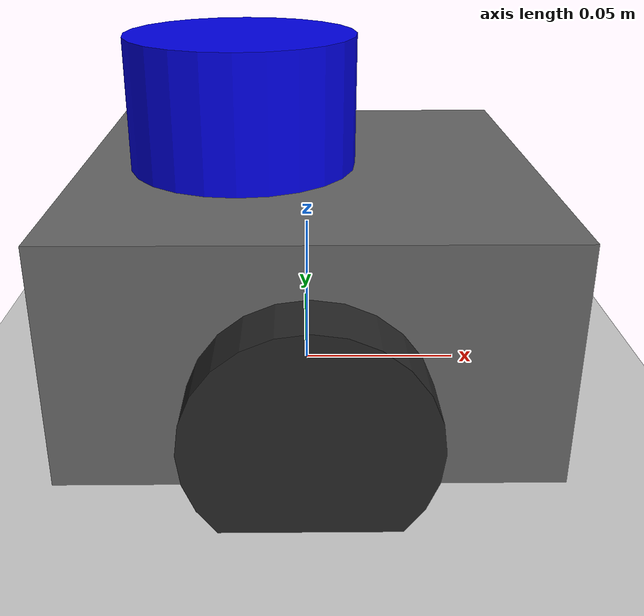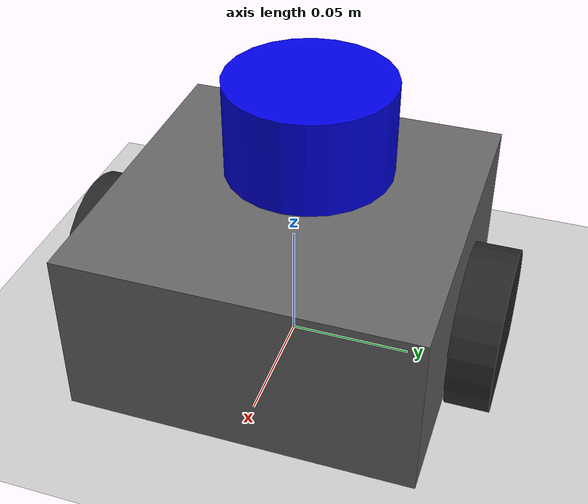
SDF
<?xml version="1.0" ?>
<sdf version="1.9">
  <world name="default">
    <physics name="1ms" type="ode">
      <max_step_size>0.001</max_step_size>
      <real_time_factor>1.0</real_time_factor>
    </physics>

    <light type="directional" name="sun">
      <cast_shadows>true</cast_shadows>
      <pose>0 0 10 0 0 0</pose>
      <diffuse>0.8 0.8 0.8 1</diffuse>
      <direction>-0.5 0.1 -0.9</direction>
    </light>

    <model name="ground_plane">
      <static>true</static>
      <link name="link">
        <collision name="collision">
          <geometry><plane><normal>0 0 1</normal></plane></geometry>
          <surface><friction><ode><mu>1.0</mu><mu2>1.0</mu2></ode></friction></surface>
        </collision>
        <visual name="visual">
          <geometry><plane><normal>0 0 1</normal><size>100 100</size></plane></geometry>
          <material>
            <ambient>0.8 0.8 0.8 1</ambient>
            <diffuse>0.8 0.8 0.8 1</diffuse>
          </material>
        </visual>
      </link>
    </model>

    <model name="turtlebot3">
      <pose>0 0 0.035 0 0 0</pose>

      <link name="base_link">
        <inertial>
          <mass>1.0</mass>
          <inertia>
            <ixx>0.001</ixx><ixy>0</ixy><ixz>0</ixz>
            <iyy>0.001</iyy><iyz>0</iyz><izz>0.001</izz>
          </inertia>
        </inertial>
        <visual name="body_visual">
          <geometry><box><size>0.14 0.14 0.07</size></box></geometry>
          <material>
            <ambient>0.3 0.3 0.3 1</ambient>
            <diffuse>0.4 0.4 0.4 1</diffuse>
          </material>
        </visual>
        <collision name="body_collision">
          <geometry><box><size>0.14 0.14 0.07</size></box></geometry>
        </collision>
        <!-- Caster as part of base_link - frictionless sphere -->
        <collision name="caster_collision">
          <pose>-0.05 0 -0.023 0 0 0</pose>
          <geometry><sphere><radius>0.012</radius></sphere></geometry>
          <surface>
            <friction>
              <ode><mu>0.0</mu><mu2>0.0</mu2><slip1>1.0</slip1><slip2>1.0</slip2></ode>
            </friction>
          </surface>
        </collision>
      </link>

      <link name="lidar_link">
        <pose relative_to="base_link">-0.02 0 0.055 0 0 0</pose>
        <inertial>
          <mass>0.05</mass>
          <inertia>
            <ixx>0.00001</ixx><ixy>0</ixy><ixz>0</ixz>
            <iyy>0.00001</iyy><iyz>0</iyz><izz>0.00001</izz>
          </inertia>
        </inertial>
        <visual name="lidar_visual">
          <geometry><cylinder><radius>0.035</radius><length>0.04</length></cylinder></geometry>
          <material>
            <ambient>0 0 0.8 1</ambient>
            <diffuse>0 0 0.9 1</diffuse>
          </material>
        </visual>
      </link>

      <joint name="lidar_joint" type="fixed">
        <parent>base_link</parent>
        <child>lidar_link</child>
      </joint>

      <link name="wheel_left">
        <pose relative_to="base_link">0 0.08 -0.012 -1.5708 0 0</pose>
        <inertial>
          <mass>0.05</mass>
          <inertia>
            <ixx>0.00005</ixx><ixy>0</ixy><ixz>0</ixz>
            <iyy>0.00005</iyy><iyz>0</iyz><izz>0.00005</izz>
          </inertia>
        </inertial>
        <visual name="visual">
          <geometry><cylinder><radius>0.033</radius><length>0.018</length></cylinder></geometry>
          <material>
            <ambient>0.1 0.1 0.1 1</ambient>
            <diffuse>0.15 0.15 0.15 1</diffuse>
          </material>
        </visual>
        <collision name="collision">
          <geometry><cylinder><radius>0.033</radius><length>0.018</length></cylinder></geometry>
          <surface>
            <friction>
              <ode><mu>1.5</mu><mu2>1.5</mu2></ode>
            </friction>
          </surface>
        </collision>
      </link>

      <link name="wheel_right">
        <pose relative_to="base_link">0 -0.08 -0.012 -1.5708 0 0</pose>
        <inertial>
          <mass>0.05</mass>
          <inertia>
            <ixx>0.00005</ixx><ixy>0</ixy><ixz>0</ixz>
            <iyy>0.00005</iyy><iyz>0</iyz><izz>0.00005</izz>
          </inertia>
        </inertial>
        <visual name="visual">
          <geometry><cylinder><radius>0.033</radius><length>0.018</length></cylinder></geometry>
          <material>
            <ambient>0.1 0.1 0.1 1</ambient>
            <diffuse>0.15 0.15 0.15 1</diffuse>
          </material>
        </visual>
        <collision name="collision">
          <geometry><cylinder><radius>0.033</radius><length>0.018</length></cylinder></geometry>
          <surface>
            <friction>
              <ode><mu>1.5</mu><mu2>1.5</mu2></ode>
            </friction>
          </surface>
        </collision>
      </link>

      <joint name="wheel_left_joint" type="revolute">
        <parent>base_link</parent>
        <child>wheel_left</child>
        <axis><xyz>0 0 1</xyz></axis>
      </joint>

      <joint name="wheel_right_joint" type="revolute">
        <parent>base_link</parent>
        <child>wheel_right</child>
        <axis><xyz>0 0 1</xyz></axis>
      </joint>

      <plugin filename="libignition-gazebo6-diff-drive-system.so" name="ignition::gazebo::systems::DiffDrive">
        <left_joint>wheel_left_joint</left_joint>
        <right_joint>wheel_right_joint</right_joint>
        <wheel_separation>0.160</wheel_separation>
        <wheel_radius>0.033</wheel_radius>
        <topic>cmd_vel</topic>
        <odom_topic>odom</odom_topic>
        <odom_publish_frequency>30</odom_publish_frequency>
      </plugin>
    </model>
  </world>
</sdf>
